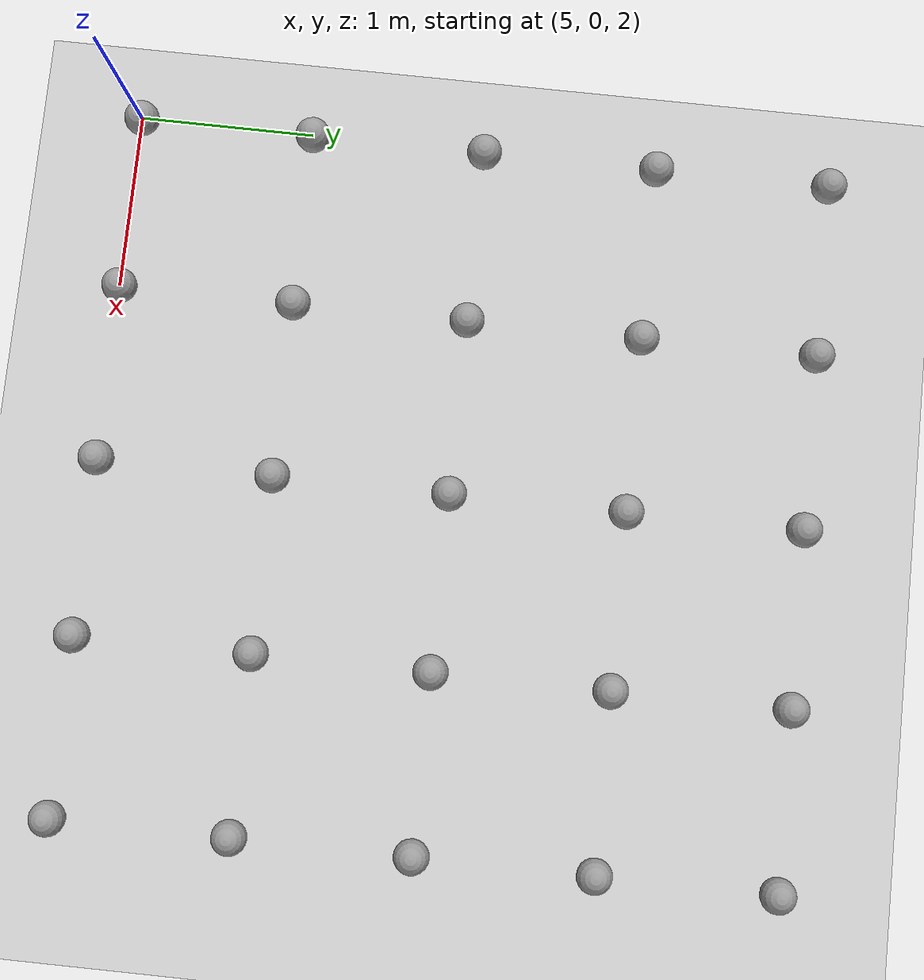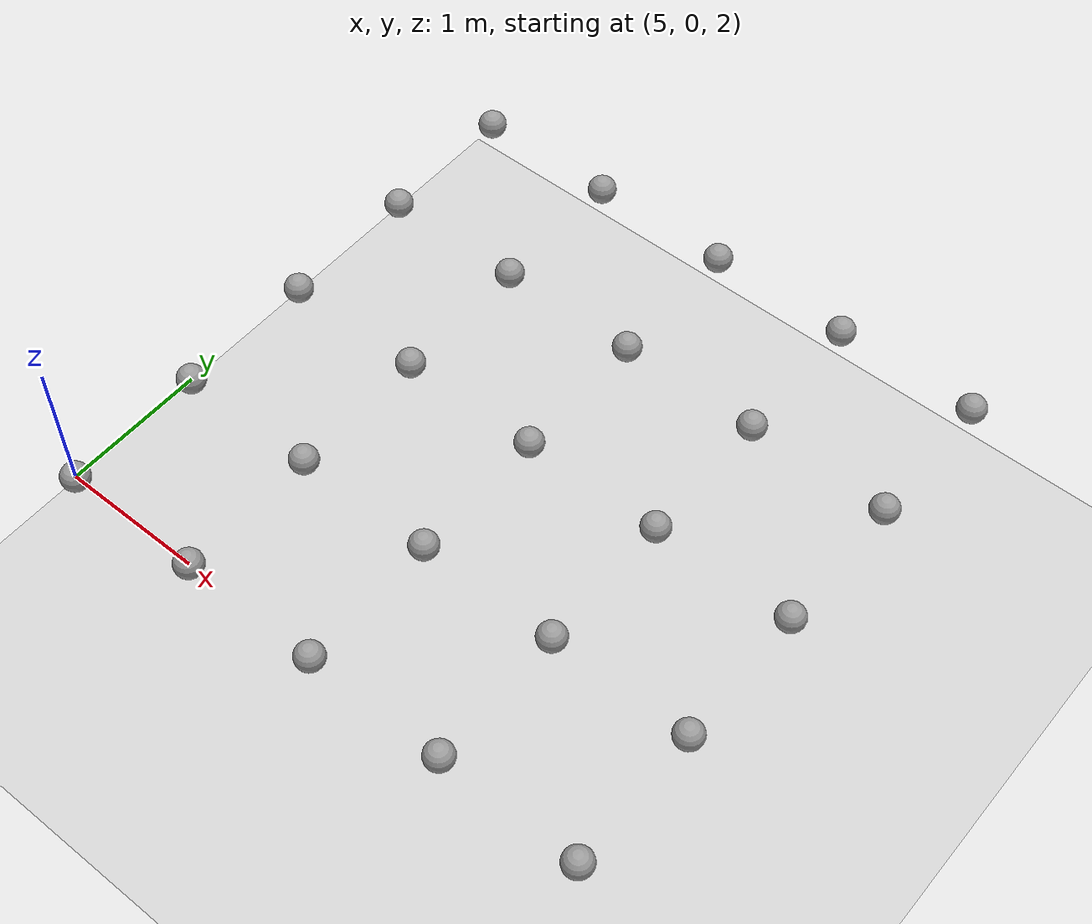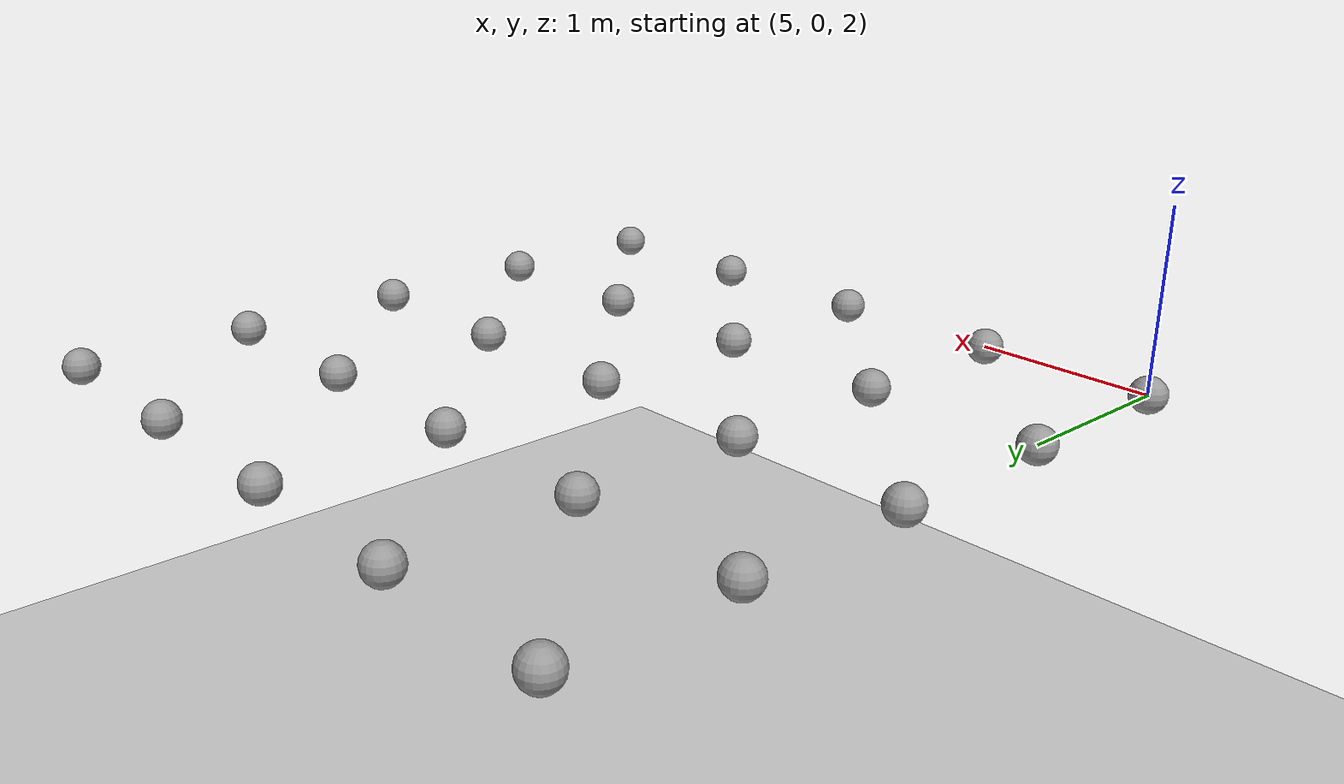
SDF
<sdf version="1.5">
 <world name="default">
  <model name="ground_plane">
   <static>true</static>
   <link name="link">
    <collision name="collision">
     <geometry><plane><normal>0 0 1</normal><size>100 100</size></plane></geometry>
     <surface>
      <bounce><restitution_coefficient>1.0</restitution_coefficient><threshold>0</threshold></bounce>
      <contact><ode><kd>1</kd><kp>1e8</kp><max_vel>1e5</max_vel><min_depth>0.001</min_depth></ode></contact>
      <friction><ode><mu>100</mu><mu2>50</mu2></ode></friction>
     </surface>
    </collision>
    <visual name="visual">
     <cast_shadows>false</cast_shadows>
     <geometry><plane><normal>0 0 1</normal><size>100 100</size></plane></geometry>
     <material>
      <script><uri>file://media/materials/scripts/gazebo.material</uri><name>Gazebo/Grey</name></script>
     </material>
    </visual>
   </link>
  </model>
  <include><uri>model://sun</uri></include>
  <model name="ball_2.005_0">
   <pose>5 0 2.005  0 0 0</pose>
   <link name="link">
    <inertial>
     <mass>11.309733552923257</mass>
     <inertia>
      <ixx>0.04523893421169304</ixx>
      <iyy>0.04523893421169304</iyy>
      <izz>0.04523893421169304</izz>
      <ixy>0.0</ixy>
      <ixz>0.0</ixz>
      <iyz>0.0</iyz>
     </inertia>
    </inertial>
    <collision name="collision">
     <geometry><sphere><radius>0.1</radius></sphere></geometry>
     <surface>
      <bounce><restitution_coefficient>1.0</restitution_coefficient><threshold>0</threshold></bounce>
      <contact><ode><kd>1</kd><kp>1e8</kp><max_vel>1e5</max_vel><min_depth>0.001</min_depth></ode></contact>
     </surface>
    </collision>
    <visual name="visual">
     <geometry><sphere><radius>0.1</radius></sphere></geometry>
     <material>
      <script><uri>file://media/materials/scripts/gazebo.material</uri><name>Gazebo/Grey</name></script>
     </material>
    </visual>
   </link>
  </model>
  <model name="ball_2.005_1">
   <pose>5 1 2.005  0 0 0</pose>
   <link name="link">
    <inertial>
     <mass>11.309733552923257</mass>
     <inertia>
      <ixx>0.04523893421169304</ixx>
      <iyy>0.04523893421169304</iyy>
      <izz>0.04523893421169304</izz>
      <ixy>0.0</ixy>
      <ixz>0.0</ixz>
      <iyz>0.0</iyz>
     </inertia>
    </inertial>
    <collision name="collision">
     <geometry><sphere><radius>0.1</radius></sphere></geometry>
     <surface>
      <bounce><restitution_coefficient>1.0</restitution_coefficient><threshold>0</threshold></bounce>
      <contact><ode><kd>1</kd><kp>1e8</kp><max_vel>1e5</max_vel><min_depth>0.001</min_depth></ode></contact>
     </surface>
    </collision>
    <visual name="visual">
     <geometry><sphere><radius>0.1</radius></sphere></geometry>
     <material>
      <script><uri>file://media/materials/scripts/gazebo.material</uri><name>Gazebo/Grey</name></script>
     </material>
    </visual>
   </link>
  </model>
  <model name="ball_2.005_2">
   <pose>5 2 2.005  0 0 0</pose>
   <link name="link">
    <inertial>
     <mass>11.309733552923257</mass>
     <inertia>
      <ixx>0.04523893421169304</ixx>
      <iyy>0.04523893421169304</iyy>
      <izz>0.04523893421169304</izz>
      <ixy>0.0</ixy>
      <ixz>0.0</ixz>
      <iyz>0.0</iyz>
     </inertia>
    </inertial>
    <collision name="collision">
     <geometry><sphere><radius>0.1</radius></sphere></geometry>
     <surface>
      <bounce><restitution_coefficient>1.0</restitution_coefficient><threshold>0</threshold></bounce>
      <contact><ode><kd>1</kd><kp>1e8</kp><max_vel>1e5</max_vel><min_depth>0.001</min_depth></ode></contact>
     </surface>
    </collision>
    <visual name="visual">
     <geometry><sphere><radius>0.1</radius></sphere></geometry>
     <material>
      <script><uri>file://media/materials/scripts/gazebo.material</uri><name>Gazebo/Grey</name></script>
     </material>
    </visual>
   </link>
  </model>
  <model name="ball_2.005_3">
   <pose>5 3 2.005  0 0 0</pose>
   <link name="link">
    <inertial>
     <mass>11.309733552923257</mass>
     <inertia>
      <ixx>0.04523893421169304</ixx>
      <iyy>0.04523893421169304</iyy>
      <izz>0.04523893421169304</izz>
      <ixy>0.0</ixy>
      <ixz>0.0</ixz>
      <iyz>0.0</iyz>
     </inertia>
    </inertial>
    <collision name="collision">
     <geometry><sphere><radius>0.1</radius></sphere></geometry>
     <surface>
      <bounce><restitution_coefficient>1.0</restitution_coefficient><threshold>0</threshold></bounce>
      <contact><ode><kd>1</kd><kp>1e8</kp><max_vel>1e5</max_vel><min_depth>0.001</min_depth></ode></contact>
     </surface>
    </collision>
    <visual name="visual">
     <geometry><sphere><radius>0.1</radius></sphere></geometry>
     <material>
      <script><uri>file://media/materials/scripts/gazebo.material</uri><name>Gazebo/Grey</name></script>
     </material>
    </visual>
   </link>
  </model>
  <model name="ball_2.005_4">
   <pose>5 4 2.005  0 0 0</pose>
   <link name="link">
    <inertial>
     <mass>11.309733552923257</mass>
     <inertia>
      <ixx>0.04523893421169304</ixx>
      <iyy>0.04523893421169304</iyy>
      <izz>0.04523893421169304</izz>
      <ixy>0.0</ixy>
      <ixz>0.0</ixz>
      <iyz>0.0</iyz>
     </inertia>
    </inertial>
    <collision name="collision">
     <geometry><sphere><radius>0.1</radius></sphere></geometry>
     <surface>
      <bounce><restitution_coefficient>1.0</restitution_coefficient><threshold>0</threshold></bounce>
      <contact><ode><kd>1</kd><kp>1e8</kp><max_vel>1e5</max_vel><min_depth>0.001</min_depth></ode></contact>
     </surface>
    </collision>
    <visual name="visual">
     <geometry><sphere><radius>0.1</radius></sphere></geometry>
     <material>
      <script><uri>file://media/materials/scripts/gazebo.material</uri><name>Gazebo/Grey</name></script>
     </material>
    </visual>
   </link>
  </model>
  <model name="ball_2.006_0">
   <pose>6 0 2.006  0 0 0</pose>
   <link name="link">
    <inertial>
     <mass>11.309733552923257</mass>
     <inertia>
      <ixx>0.04523893421169304</ixx>
      <iyy>0.04523893421169304</iyy>
      <izz>0.04523893421169304</izz>
      <ixy>0.0</ixy>
      <ixz>0.0</ixz>
      <iyz>0.0</iyz>
     </inertia>
    </inertial>
    <collision name="collision">
     <geometry><sphere><radius>0.1</radius></sphere></geometry>
     <surface>
      <bounce><restitution_coefficient>1.0</restitution_coefficient><threshold>0</threshold></bounce>
      <contact><ode><kd>1</kd><kp>1e8</kp><max_vel>1e5</max_vel><min_depth>0.001</min_depth></ode></contact>
     </surface>
    </collision>
    <visual name="visual">
     <geometry><sphere><radius>0.1</radius></sphere></geometry>
     <material>
      <script><uri>file://media/materials/scripts/gazebo.material</uri><name>Gazebo/Grey</name></script>
     </material>
    </visual>
   </link>
  </model>
  <model name="ball_2.006_1">
   <pose>6 1 2.006  0 0 0</pose>
   <link name="link">
    <inertial>
     <mass>11.309733552923257</mass>
     <inertia>
      <ixx>0.04523893421169304</ixx>
      <iyy>0.04523893421169304</iyy>
      <izz>0.04523893421169304</izz>
      <ixy>0.0</ixy>
      <ixz>0.0</ixz>
      <iyz>0.0</iyz>
     </inertia>
    </inertial>
    <collision name="collision">
     <geometry><sphere><radius>0.1</radius></sphere></geometry>
     <surface>
      <bounce><restitution_coefficient>1.0</restitution_coefficient><threshold>0</threshold></bounce>
      <contact><ode><kd>1</kd><kp>1e8</kp><max_vel>1e5</max_vel><min_depth>0.001</min_depth></ode></contact>
     </surface>
    </collision>
    <visual name="visual">
     <geometry><sphere><radius>0.1</radius></sphere></geometry>
     <material>
      <script><uri>file://media/materials/scripts/gazebo.material</uri><name>Gazebo/Grey</name></script>
     </material>
    </visual>
   </link>
  </model>
  <model name="ball_2.006_2">
   <pose>6 2 2.006  0 0 0</pose>
   <link name="link">
    <inertial>
     <mass>11.309733552923257</mass>
     <inertia>
      <ixx>0.04523893421169304</ixx>
      <iyy>0.04523893421169304</iyy>
      <izz>0.04523893421169304</izz>
      <ixy>0.0</ixy>
      <ixz>0.0</ixz>
      <iyz>0.0</iyz>
     </inertia>
    </inertial>
    <collision name="collision">
     <geometry><sphere><radius>0.1</radius></sphere></geometry>
     <surface>
      <bounce><restitution_coefficient>1.0</restitution_coefficient><threshold>0</threshold></bounce>
      <contact><ode><kd>1</kd><kp>1e8</kp><max_vel>1e5</max_vel><min_depth>0.001</min_depth></ode></contact>
     </surface>
    </collision>
    <visual name="visual">
     <geometry><sphere><radius>0.1</radius></sphere></geometry>
     <material>
      <script><uri>file://media/materials/scripts/gazebo.material</uri><name>Gazebo/Grey</name></script>
     </material>
    </visual>
   </link>
  </model>
  <model name="ball_2.006_3">
   <pose>6 3 2.006  0 0 0</pose>
   <link name="link">
    <inertial>
     <mass>11.309733552923257</mass>
     <inertia>
      <ixx>0.04523893421169304</ixx>
      <iyy>0.04523893421169304</iyy>
      <izz>0.04523893421169304</izz>
      <ixy>0.0</ixy>
      <ixz>0.0</ixz>
      <iyz>0.0</iyz>
     </inertia>
    </inertial>
    <collision name="collision">
     <geometry><sphere><radius>0.1</radius></sphere></geometry>
     <surface>
      <bounce><restitution_coefficient>1.0</restitution_coefficient><threshold>0</threshold></bounce>
      <contact><ode><kd>1</kd><kp>1e8</kp><max_vel>1e5</max_vel><min_depth>0.001</min_depth></ode></contact>
     </surface>
    </collision>
    <visual name="visual">
     <geometry><sphere><radius>0.1</radius></sphere></geometry>
     <material>
      <script><uri>file://media/materials/scripts/gazebo.material</uri><name>Gazebo/Grey</name></script>
     </material>
    </visual>
   </link>
  </model>
  <model name="ball_2.006_4">
   <pose>6 4 2.006  0 0 0</pose>
   <link name="link">
    <inertial>
     <mass>11.309733552923257</mass>
     <inertia>
      <ixx>0.04523893421169304</ixx>
      <iyy>0.04523893421169304</iyy>
      <izz>0.04523893421169304</izz>
      <ixy>0.0</ixy>
      <ixz>0.0</ixz>
      <iyz>0.0</iyz>
     </inertia>
    </inertial>
    <collision name="collision">
     <geometry><sphere><radius>0.1</radius></sphere></geometry>
     <surface>
      <bounce><restitution_coefficient>1.0</restitution_coefficient><threshold>0</threshold></bounce>
      <contact><ode><kd>1</kd><kp>1e8</kp><max_vel>1e5</max_vel><min_depth>0.001</min_depth></ode></contact>
     </surface>
    </collision>
    <visual name="visual">
     <geometry><sphere><radius>0.1</radius></sphere></geometry>
     <material>
      <script><uri>file://media/materials/scripts/gazebo.material</uri><name>Gazebo/Grey</name></script>
     </material>
    </visual>
   </link>
  </model>
  <model name="ball_2.007_0">
   <pose>7 0 2.007  0 0 0</pose>
   <link name="link">
    <inertial>
     <mass>11.309733552923257</mass>
     <inertia>
      <ixx>0.04523893421169304</ixx>
      <iyy>0.04523893421169304</iyy>
      <izz>0.04523893421169304</izz>
      <ixy>0.0</ixy>
      <ixz>0.0</ixz>
      <iyz>0.0</iyz>
     </inertia>
    </inertial>
    <collision name="collision">
     <geometry><sphere><radius>0.1</radius></sphere></geometry>
     <surface>
      <bounce><restitution_coefficient>1.0</restitution_coefficient><threshold>0</threshold></bounce>
      <contact><ode><kd>1</kd><kp>1e8</kp><max_vel>1e5</max_vel><min_depth>0.001</min_depth></ode></contact>
     </surface>
    </collision>
    <visual name="visual">
     <geometry><sphere><radius>0.1</radius></sphere></geometry>
     <material>
      <script><uri>file://media/materials/scripts/gazebo.material</uri><name>Gazebo/Grey</name></script>
     </material>
    </visual>
   </link>
  </model>
  <model name="ball_2.007_1">
   <pose>7 1 2.007  0 0 0</pose>
   <link name="link">
    <inertial>
     <mass>11.309733552923257</mass>
     <inertia>
      <ixx>0.04523893421169304</ixx>
      <iyy>0.04523893421169304</iyy>
      <izz>0.04523893421169304</izz>
      <ixy>0.0</ixy>
      <ixz>0.0</ixz>
      <iyz>0.0</iyz>
     </inertia>
    </inertial>
    <collision name="collision">
     <geometry><sphere><radius>0.1</radius></sphere></geometry>
     <surface>
      <bounce><restitution_coefficient>1.0</restitution_coefficient><threshold>0</threshold></bounce>
      <contact><ode><kd>1</kd><kp>1e8</kp><max_vel>1e5</max_vel><min_depth>0.001</min_depth></ode></contact>
     </surface>
    </collision>
    <visual name="visual">
     <geometry><sphere><radius>0.1</radius></sphere></geometry>
     <material>
      <script><uri>file://media/materials/scripts/gazebo.material</uri><name>Gazebo/Grey</name></script>
     </material>
    </visual>
   </link>
  </model>
  <model name="ball_2.007_2">
   <pose>7 2 2.007  0 0 0</pose>
   <link name="link">
    <inertial>
     <mass>11.309733552923257</mass>
     <inertia>
      <ixx>0.04523893421169304</ixx>
      <iyy>0.04523893421169304</iyy>
      <izz>0.04523893421169304</izz>
      <ixy>0.0</ixy>
      <ixz>0.0</ixz>
      <iyz>0.0</iyz>
     </inertia>
    </inertial>
    <collision name="collision">
     <geometry><sphere><radius>0.1</radius></sphere></geometry>
     <surface>
      <bounce><restitution_coefficient>1.0</restitution_coefficient><threshold>0</threshold></bounce>
      <contact><ode><kd>1</kd><kp>1e8</kp><max_vel>1e5</max_vel><min_depth>0.001</min_depth></ode></contact>
     </surface>
    </collision>
    <visual name="visual">
     <geometry><sphere><radius>0.1</radius></sphere></geometry>
     <material>
      <script><uri>file://media/materials/scripts/gazebo.material</uri><name>Gazebo/Grey</name></script>
     </material>
    </visual>
   </link>
  </model>
  <model name="ball_2.007_3">
   <pose>7 3 2.007  0 0 0</pose>
   <link name="link">
    <inertial>
     <mass>11.309733552923257</mass>
     <inertia>
      <ixx>0.04523893421169304</ixx>
      <iyy>0.04523893421169304</iyy>
      <izz>0.04523893421169304</izz>
      <ixy>0.0</ixy>
      <ixz>0.0</ixz>
      <iyz>0.0</iyz>
     </inertia>
    </inertial>
    <collision name="collision">
     <geometry><sphere><radius>0.1</radius></sphere></geometry>
     <surface>
      <bounce><restitution_coefficient>1.0</restitution_coefficient><threshold>0</threshold></bounce>
      <contact><ode><kd>1</kd><kp>1e8</kp><max_vel>1e5</max_vel><min_depth>0.001</min_depth></ode></contact>
     </surface>
    </collision>
    <visual name="visual">
     <geometry><sphere><radius>0.1</radius></sphere></geometry>
     <material>
      <script><uri>file://media/materials/scripts/gazebo.material</uri><name>Gazebo/Grey</name></script>
     </material>
    </visual>
   </link>
  </model>
  <model name="ball_2.007_4">
   <pose>7 4 2.007  0 0 0</pose>
   <link name="link">
    <inertial>
     <mass>11.309733552923257</mass>
     <inertia>
      <ixx>0.04523893421169304</ixx>
      <iyy>0.04523893421169304</iyy>
      <izz>0.04523893421169304</izz>
      <ixy>0.0</ixy>
      <ixz>0.0</ixz>
      <iyz>0.0</iyz>
     </inertia>
    </inertial>
    <collision name="collision">
     <geometry><sphere><radius>0.1</radius></sphere></geometry>
     <surface>
      <bounce><restitution_coefficient>1.0</restitution_coefficient><threshold>0</threshold></bounce>
      <contact><ode><kd>1</kd><kp>1e8</kp><max_vel>1e5</max_vel><min_depth>0.001</min_depth></ode></contact>
     </surface>
    </collision>
    <visual name="visual">
     <geometry><sphere><radius>0.1</radius></sphere></geometry>
     <material>
      <script><uri>file://media/materials/scripts/gazebo.material</uri><name>Gazebo/Grey</name></script>
     </material>
    </visual>
   </link>
  </model>
  <model name="ball_2.008_0">
   <pose>8 0 2.008  0 0 0</pose>
   <link name="link">
    <inertial>
     <mass>11.309733552923257</mass>
     <inertia>
      <ixx>0.04523893421169304</ixx>
      <iyy>0.04523893421169304</iyy>
      <izz>0.04523893421169304</izz>
      <ixy>0.0</ixy>
      <ixz>0.0</ixz>
      <iyz>0.0</iyz>
     </inertia>
    </inertial>
    <collision name="collision">
     <geometry><sphere><radius>0.1</radius></sphere></geometry>
     <surface>
      <bounce><restitution_coefficient>1.0</restitution_coefficient><threshold>0</threshold></bounce>
      <contact><ode><kd>1</kd><kp>1e8</kp><max_vel>1e5</max_vel><min_depth>0.001</min_depth></ode></contact>
     </surface>
    </collision>
    <visual name="visual">
     <geometry><sphere><radius>0.1</radius></sphere></geometry>
     <material>
      <script><uri>file://media/materials/scripts/gazebo.material</uri><name>Gazebo/Grey</name></script>
     </material>
    </visual>
   </link>
  </model>
  <model name="ball_2.008_1">
   <pose>8 1 2.008  0 0 0</pose>
   <link name="link">
    <inertial>
     <mass>11.309733552923257</mass>
     <inertia>
      <ixx>0.04523893421169304</ixx>
      <iyy>0.04523893421169304</iyy>
      <izz>0.04523893421169304</izz>
      <ixy>0.0</ixy>
      <ixz>0.0</ixz>
      <iyz>0.0</iyz>
     </inertia>
    </inertial>
    <collision name="collision">
     <geometry><sphere><radius>0.1</radius></sphere></geometry>
     <surface>
      <bounce><restitution_coefficient>1.0</restitution_coefficient><threshold>0</threshold></bounce>
      <contact><ode><kd>1</kd><kp>1e8</kp><max_vel>1e5</max_vel><min_depth>0.001</min_depth></ode></contact>
     </surface>
    </collision>
    <visual name="visual">
     <geometry><sphere><radius>0.1</radius></sphere></geometry>
     <material>
      <script><uri>file://media/materials/scripts/gazebo.material</uri><name>Gazebo/Grey</name></script>
     </material>
    </visual>
   </link>
  </model>
  <model name="ball_2.008_2">
   <pose>8 2 2.008  0 0 0</pose>
   <link name="link">
    <inertial>
     <mass>11.309733552923257</mass>
     <inertia>
      <ixx>0.04523893421169304</ixx>
      <iyy>0.04523893421169304</iyy>
      <izz>0.04523893421169304</izz>
      <ixy>0.0</ixy>
      <ixz>0.0</ixz>
      <iyz>0.0</iyz>
     </inertia>
    </inertial>
    <collision name="collision">
     <geometry><sphere><radius>0.1</radius></sphere></geometry>
     <surface>
      <bounce><restitution_coefficient>1.0</restitution_coefficient><threshold>0</threshold></bounce>
      <contact><ode><kd>1</kd><kp>1e8</kp><max_vel>1e5</max_vel><min_depth>0.001</min_depth></ode></contact>
     </surface>
    </collision>
    <visual name="visual">
     <geometry><sphere><radius>0.1</radius></sphere></geometry>
     <material>
      <script><uri>file://media/materials/scripts/gazebo.material</uri><name>Gazebo/Grey</name></script>
     </material>
    </visual>
   </link>
  </model>
  <model name="ball_2.008_3">
   <pose>8 3 2.008  0 0 0</pose>
   <link name="link">
    <inertial>
     <mass>11.309733552923257</mass>
     <inertia>
      <ixx>0.04523893421169304</ixx>
      <iyy>0.04523893421169304</iyy>
      <izz>0.04523893421169304</izz>
      <ixy>0.0</ixy>
      <ixz>0.0</ixz>
      <iyz>0.0</iyz>
     </inertia>
    </inertial>
    <collision name="collision">
     <geometry><sphere><radius>0.1</radius></sphere></geometry>
     <surface>
      <bounce><restitution_coefficient>1.0</restitution_coefficient><threshold>0</threshold></bounce>
      <contact><ode><kd>1</kd><kp>1e8</kp><max_vel>1e5</max_vel><min_depth>0.001</min_depth></ode></contact>
     </surface>
    </collision>
    <visual name="visual">
     <geometry><sphere><radius>0.1</radius></sphere></geometry>
     <material>
      <script><uri>file://media/materials/scripts/gazebo.material</uri><name>Gazebo/Grey</name></script>
     </material>
    </visual>
   </link>
  </model>
  <model name="ball_2.008_4">
   <pose>8 4 2.008  0 0 0</pose>
   <link name="link">
    <inertial>
     <mass>11.309733552923257</mass>
     <inertia>
      <ixx>0.04523893421169304</ixx>
      <iyy>0.04523893421169304</iyy>
      <izz>0.04523893421169304</izz>
      <ixy>0.0</ixy>
      <ixz>0.0</ixz>
      <iyz>0.0</iyz>
     </inertia>
    </inertial>
    <collision name="collision">
     <geometry><sphere><radius>0.1</radius></sphere></geometry>
     <surface>
      <bounce><restitution_coefficient>1.0</restitution_coefficient><threshold>0</threshold></bounce>
      <contact><ode><kd>1</kd><kp>1e8</kp><max_vel>1e5</max_vel><min_depth>0.001</min_depth></ode></contact>
     </surface>
    </collision>
    <visual name="visual">
     <geometry><sphere><radius>0.1</radius></sphere></geometry>
     <material>
      <script><uri>file://media/materials/scripts/gazebo.material</uri><name>Gazebo/Grey</name></script>
     </material>
    </visual>
   </link>
  </model>
  <model name="ball_2.009_0">
   <pose>9 0 2.009  0 0 0</pose>
   <link name="link">
    <inertial>
     <mass>11.309733552923257</mass>
     <inertia>
      <ixx>0.04523893421169304</ixx>
      <iyy>0.04523893421169304</iyy>
      <izz>0.04523893421169304</izz>
      <ixy>0.0</ixy>
      <ixz>0.0</ixz>
      <iyz>0.0</iyz>
     </inertia>
    </inertial>
    <collision name="collision">
     <geometry><sphere><radius>0.1</radius></sphere></geometry>
     <surface>
      <bounce><restitution_coefficient>1.0</restitution_coefficient><threshold>0</threshold></bounce>
      <contact><ode><kd>1</kd><kp>1e8</kp><max_vel>1e5</max_vel><min_depth>0.001</min_depth></ode></contact>
     </surface>
    </collision>
    <visual name="visual">
     <geometry><sphere><radius>0.1</radius></sphere></geometry>
     <material>
      <script><uri>file://media/materials/scripts/gazebo.material</uri><name>Gazebo/Grey</name></script>
     </material>
    </visual>
   </link>
  </model>
  <model name="ball_2.009_1">
   <pose>9 1 2.009  0 0 0</pose>
   <link name="link">
    <inertial>
     <mass>11.309733552923257</mass>
     <inertia>
      <ixx>0.04523893421169304</ixx>
      <iyy>0.04523893421169304</iyy>
      <izz>0.04523893421169304</izz>
      <ixy>0.0</ixy>
      <ixz>0.0</ixz>
      <iyz>0.0</iyz>
     </inertia>
    </inertial>
    <collision name="collision">
     <geometry><sphere><radius>0.1</radius></sphere></geometry>
     <surface>
      <bounce><restitution_coefficient>1.0</restitution_coefficient><threshold>0</threshold></bounce>
      <contact><ode><kd>1</kd><kp>1e8</kp><max_vel>1e5</max_vel><min_depth>0.001</min_depth></ode></contact>
     </surface>
    </collision>
    <visual name="visual">
     <geometry><sphere><radius>0.1</radius></sphere></geometry>
     <material>
      <script><uri>file://media/materials/scripts/gazebo.material</uri><name>Gazebo/Grey</name></script>
     </material>
    </visual>
   </link>
  </model>
  <model name="ball_2.009_2">
   <pose>9 2 2.009  0 0 0</pose>
   <link name="link">
    <inertial>
     <mass>11.309733552923257</mass>
     <inertia>
      <ixx>0.04523893421169304</ixx>
      <iyy>0.04523893421169304</iyy>
      <izz>0.04523893421169304</izz>
      <ixy>0.0</ixy>
      <ixz>0.0</ixz>
      <iyz>0.0</iyz>
     </inertia>
    </inertial>
    <collision name="collision">
     <geometry><sphere><radius>0.1</radius></sphere></geometry>
     <surface>
      <bounce><restitution_coefficient>1.0</restitution_coefficient><threshold>0</threshold></bounce>
      <contact><ode><kd>1</kd><kp>1e8</kp><max_vel>1e5</max_vel><min_depth>0.001</min_depth></ode></contact>
     </surface>
    </collision>
    <visual name="visual">
     <geometry><sphere><radius>0.1</radius></sphere></geometry>
     <material>
      <script><uri>file://media/materials/scripts/gazebo.material</uri><name>Gazebo/Grey</name></script>
     </material>
    </visual>
   </link>
  </model>
  <model name="ball_2.009_3">
   <pose>9 3 2.009  0 0 0</pose>
   <link name="link">
    <inertial>
     <mass>11.309733552923257</mass>
     <inertia>
      <ixx>0.04523893421169304</ixx>
      <iyy>0.04523893421169304</iyy>
      <izz>0.04523893421169304</izz>
      <ixy>0.0</ixy>
      <ixz>0.0</ixz>
      <iyz>0.0</iyz>
     </inertia>
    </inertial>
    <collision name="collision">
     <geometry><sphere><radius>0.1</radius></sphere></geometry>
     <surface>
      <bounce><restitution_coefficient>1.0</restitution_coefficient><threshold>0</threshold></bounce>
      <contact><ode><kd>1</kd><kp>1e8</kp><max_vel>1e5</max_vel><min_depth>0.001</min_depth></ode></contact>
     </surface>
    </collision>
    <visual name="visual">
     <geometry><sphere><radius>0.1</radius></sphere></geometry>
     <material>
      <script><uri>file://media/materials/scripts/gazebo.material</uri><name>Gazebo/Grey</name></script>
     </material>
    </visual>
   </link>
  </model>
  <model name="ball_2.009_4">
   <pose>9 4 2.009  0 0 0</pose>
   <link name="link">
    <inertial>
     <mass>11.309733552923257</mass>
     <inertia>
      <ixx>0.04523893421169304</ixx>
      <iyy>0.04523893421169304</iyy>
      <izz>0.04523893421169304</izz>
      <ixy>0.0</ixy>
      <ixz>0.0</ixz>
      <iyz>0.0</iyz>
     </inertia>
    </inertial>
    <collision name="collision">
     <geometry><sphere><radius>0.1</radius></sphere></geometry>
     <surface>
      <bounce><restitution_coefficient>1.0</restitution_coefficient><threshold>0</threshold></bounce>
      <contact><ode><kd>1</kd><kp>1e8</kp><max_vel>1e5</max_vel><min_depth>0.001</min_depth></ode></contact>
     </surface>
    </collision>
    <visual name="visual">
     <geometry><sphere><radius>0.1</radius></sphere></geometry>
     <material>
      <script><uri>file://media/materials/scripts/gazebo.material</uri><name>Gazebo/Grey</name></script>
     </material>
    </visual>
   </link>
  </model>
 </world>
</sdf>
